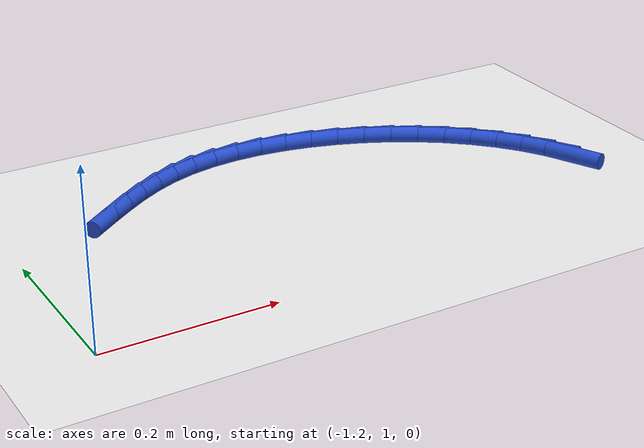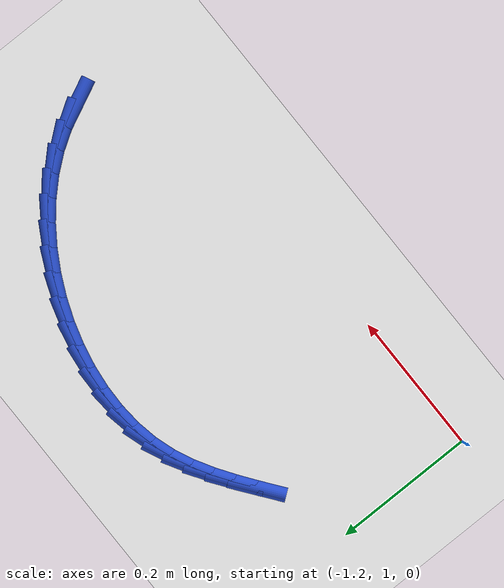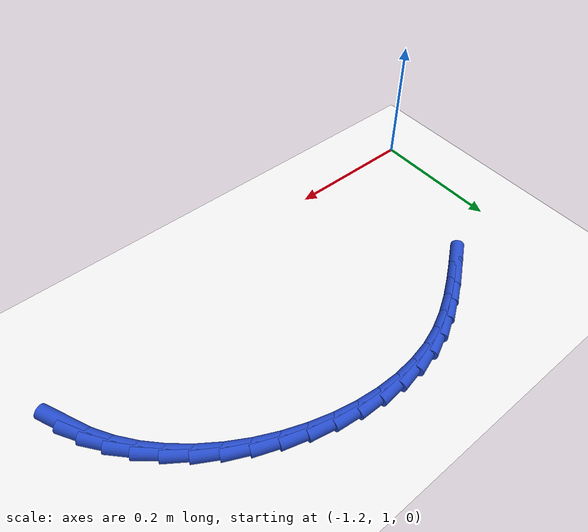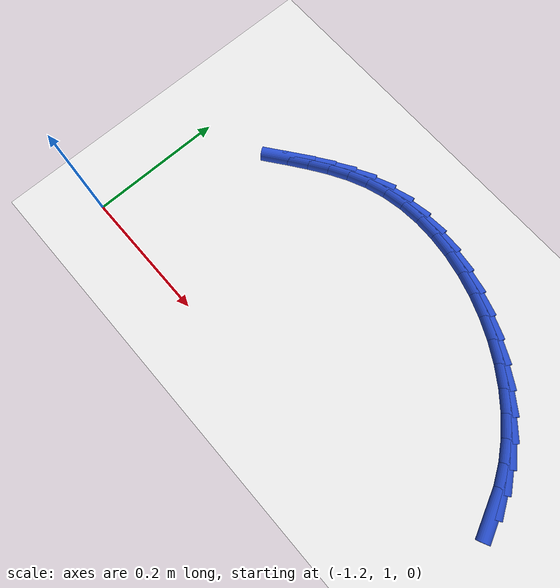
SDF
<sdf version="1.6">
 <world name="default">
  <model name="ground_plane">
   <static>1</static>
   <link name="link">
    <collision name="collision">
     <geometry><plane><normal>0 0 1</normal><size>100 100</size></plane></geometry>
     <surface><friction><ode><mu>100</mu><mu2>50</mu2></ode></friction></surface>
    </collision>
    <visual name="visual">
     <cast_shadows>0</cast_shadows>
     <geometry><plane><normal>0 0 1</normal><size>100 100</size></plane></geometry>
     <material>
      <script><uri>file://media/materials/scripts/gazebo.material</uri><name>Gazebo/WhiteGlow</name></script>
     </material>
    </visual>
   </link>
  </model>
  <model name="line">
   <link name="link_42">
    <pose>-0.5274440859321834 1.1215499630278487 0.01 0 1.57 -1.1298664862024286</pose>
    <collision name="collision">
     <geometry><cylinder><radius>0.01</radius><length>0.08</length></cylinder></geometry>
    </collision>
    <visual name="visual">
     <material>
      <script><name>Gazebo/Blue</name><uri>file://media/materials/scripts/gazebo.material</uri></script>
     </material>
     <geometry><cylinder><radius>0.01</radius><length>0.08</length></cylinder></geometry>
    </visual>
   </link>
   <link name="link_43">
    <pose>-0.5409423319355913 1.1501529746308705 0.01 0 1.57 -1.0085178067597893</pose>
    <collision name="collision">
     <geometry><cylinder><radius>0.01</radius><length>0.08</length></cylinder></geometry>
    </collision>
    <visual name="visual">
     <material>
      <script><name>Gazebo/Blue</name><uri>file://media/materials/scripts/gazebo.material</uri></script>
     </material>
     <geometry><cylinder><radius>0.01</radius><length>0.08</length></cylinder></geometry>
    </visual>
   </link>
   <link name="link_44">
    <pose>-0.5580003314924393 1.1772236553269166 0.01 0 1.57 -0.897079715083553</pose>
    <collision name="collision">
     <geometry><cylinder><radius>0.01</radius><length>0.08</length></cylinder></geometry>
    </collision>
    <visual name="visual">
     <material>
      <script><name>Gazebo/Blue</name><uri>file://media/materials/scripts/gazebo.material</uri></script>
     </material>
     <geometry><cylinder><radius>0.01</radius><length>0.08</length></cylinder></geometry>
    </visual>
   </link>
   <link name="link_45">
    <pose>-0.5782722103292995 1.2026167826896061 0.01 0 1.57 -0.7949259154296981</pose>
    <collision name="collision">
     <geometry><cylinder><radius>0.01</radius><length>0.08</length></cylinder></geometry>
    </collision>
    <visual name="visual">
     <material>
      <script><name>Gazebo/Blue</name><uri>file://media/materials/scripts/gazebo.material</uri></script>
     </material>
     <geometry><cylinder><radius>0.01</radius><length>0.08</length></cylinder></geometry>
    </visual>
   </link>
   <link name="link_46">
    <pose>-0.6013995535018942 1.2261890819393602 0.01 0 1.57 -0.700572011375388</pose>
    <collision name="collision">
     <geometry><cylinder><radius>0.01</radius><length>0.08</length></cylinder></geometry>
    </collision>
    <visual name="visual">
     <material>
      <script><name>Gazebo/Blue</name><uri>file://media/materials/scripts/gazebo.material</uri></script>
     </material>
     <geometry><cylinder><radius>0.01</radius><length>0.08</length></cylinder></geometry>
    </visual>
   </link>
   <link name="link_47">
    <pose>-0.6270239460659456 1.2477972782966018 0.01 0 1.57 -0.6123365396463943</pose>
    <collision name="collision">
     <geometry><cylinder><radius>0.01</radius><length>0.08</length></cylinder></geometry>
    </collision>
    <visual name="visual">
     <material>
      <script><name>Gazebo/Blue</name><uri>file://media/materials/scripts/gazebo.material</uri></script>
     </material>
     <geometry><cylinder><radius>0.01</radius><length>0.08</length></cylinder></geometry>
    </visual>
   </link>
   <link name="link_48">
    <pose>-0.654786973077176 1.2672980969817524 0.01 0 1.57 -0.5284937240804494</pose>
    <collision name="collision">
     <geometry><cylinder><radius>0.01</radius><length>0.08</length></cylinder></geometry>
    </collision>
    <visual name="visual">
     <material>
      <script><name>Gazebo/Blue</name><uri>file://media/materials/scripts/gazebo.material</uri></script>
     </material>
     <geometry><cylinder><radius>0.01</radius><length>0.08</length></cylinder></geometry>
    </visual>
   </link>
   <link name="link_49">
    <pose>-0.6843302195913078 1.2845482632152347 0.01 0 1.57 -0.44733660933894726</pose>
    <collision name="collision">
     <geometry><cylinder><radius>0.01</radius><length>0.08</length></cylinder></geometry>
    </collision>
    <visual name="visual">
     <material>
      <script><name>Gazebo/Blue</name><uri>file://media/materials/scripts/gazebo.material</uri></script>
     </material>
     <geometry><cylinder><radius>0.01</radius><length>0.08</length></cylinder></geometry>
    </visual>
   </link>
   <link name="link_50">
    <pose>-0.7152952706640631 1.299404502217471 0.01 0 1.57 -0.3671848753250154</pose>
    <collision name="collision">
     <geometry><cylinder><radius>0.01</radius><length>0.08</length></cylinder></geometry>
    </collision>
    <visual name="visual">
     <material>
      <script><name>Gazebo/Blue</name><uri>file://media/materials/scripts/gazebo.material</uri></script>
     </material>
     <geometry><cylinder><radius>0.01</radius><length>0.08</length></cylinder></geometry>
    </visual>
   </link>
   <link name="link_51">
    <pose>-0.7473237113511644 1.3117235392088826 0.01 0 1.57 -0.2863630984443288</pose>
    <collision name="collision">
     <geometry><cylinder><radius>0.01</radius><length>0.08</length></cylinder></geometry>
    </collision>
    <visual name="visual">
     <material>
      <script><name>Gazebo/Blue</name><uri>file://media/materials/scripts/gazebo.material</uri></script>
     </material>
     <geometry><cylinder><radius>0.01</radius><length>0.08</length></cylinder></geometry>
    </visual>
   </link>
   <link name="link_52">
    <pose>-0.7800571267083338 1.321362099409893 0.01 0 1.57 -0.2031677565558003</pose>
    <collision name="collision">
     <geometry><cylinder><radius>0.01</radius><length>0.08</length></cylinder></geometry>
    </collision>
    <visual name="visual">
     <material>
      <script><name>Gazebo/Blue</name><uri>file://media/materials/scripts/gazebo.material</uri></script>
     </material>
     <geometry><cylinder><radius>0.01</radius><length>0.08</length></cylinder></geometry>
    </visual>
   </link>
   <link name="link_53">
    <pose>-0.8131371017912935 1.3281769080409227 0.01 0 1.57 -0.11583834713216741</pose>
    <collision name="collision">
     <geometry><cylinder><radius>0.01</radius><length>0.08</length></cylinder></geometry>
    </collision>
    <visual name="visual">
     <material>
      <script><name>Gazebo/Blue</name><uri>file://media/materials/scripts/gazebo.material</uri></script>
     </material>
     <geometry><cylinder><radius>0.01</radius><length>0.08</length></cylinder></geometry>
    </visual>
   </link>
   <link name="link_54">
    <pose>-0.8462052216557658 1.3320246903223947 0.01 0 1.57 -0.022550600253544082</pose>
    <collision name="collision">
     <geometry><cylinder><radius>0.01</radius><length>0.08</length></cylinder></geometry>
    </collision>
    <visual name="visual">
     <material>
      <script><name>Gazebo/Blue</name><uri>file://media/materials/scripts/gazebo.material</uri></script>
     </material>
     <geometry><cylinder><radius>0.01</radius><length>0.08</length></cylinder></geometry>
    </visual>
   </link>
   <link name="link_55">
    <pose>-0.8789030713574737 1.3327621714747315 0.01 0 1.57 0.07854189724979344</pose>
    <collision name="collision">
     <geometry><cylinder><radius>0.01</radius><length>0.08</length></cylinder></geometry>
    </collision>
    <visual name="visual">
     <material>
      <script><name>Gazebo/Blue</name><uri>file://media/materials/scripts/gazebo.material</uri></script>
     </material>
     <geometry><cylinder><radius>0.01</radius><length>0.08</length></cylinder></geometry>
    </visual>
   </link>
   <link name="link_56">
    <pose>-0.9108722359521386 1.3302460767183546 0.01 0 1.57 0.18917898786006135</pose>
    <collision name="collision">
     <geometry><cylinder><radius>0.01</radius><length>0.08</length></cylinder></geometry>
    </collision>
    <visual name="visual">
     <material>
      <script><name>Gazebo/Blue</name><uri>file://media/materials/scripts/gazebo.material</uri></script>
     </material>
     <geometry><cylinder><radius>0.01</radius><length>0.08</length></cylinder></geometry>
    </visual>
   </link>
   <link name="link_57">
    <pose>-0.9417543004954834 1.3243331312736872 0.01 0 1.57 0.310371444108355</pose>
    <collision name="collision">
     <geometry><cylinder><radius>0.01</radius><length>0.08</length></cylinder></geometry>
    </collision>
    <visual name="visual">
     <material>
      <script><name>Gazebo/Blue</name><uri>file://media/materials/scripts/gazebo.material</uri></script>
     </material>
     <geometry><cylinder><radius>0.01</radius><length>0.08</length></cylinder></geometry>
    </visual>
   </link>
   <link name="link_58">
    <pose>-0.971197612150102 1.3148895685342872 0.01 0 1.57 0.42788248551583796</pose>
    <collision name="collision">
     <geometry><cylinder><radius>0.01</radius><length>0.08</length></cylinder></geometry>
    </collision>
    <visual name="visual">
     <material>
      <script><name>Gazebo/Blue</name><uri>file://media/materials/scripts/gazebo.material</uri></script>
     </material>
     <geometry><cylinder><radius>0.01</radius><length>0.08</length></cylinder></geometry>
    </visual>
   </link>
   <link name="link_59">
    <pose>-0.9991171688426635 1.3021565585340167 0.01 0 1.57 0.5207621515845853</pose>
    <collision name="collision">
     <geometry><cylinder><radius>0.01</radius><length>0.08</length></cylinder></geometry>
    </collision>
    <visual name="visual">
     <material>
      <script><name>Gazebo/Blue</name><uri>file://media/materials/scripts/gazebo.material</uri></script>
     </material>
     <geometry><cylinder><radius>0.01</radius><length>0.08</length></cylinder></geometry>
    </visual>
   </link>
   <link name="link_60">
    <pose>-1.0257765564623886 1.2868654195348226 0.01 0 1.57 0.586941643941539</pose>
    <collision name="collision">
     <geometry><cylinder><radius>0.01</radius><length>0.08</length></cylinder></geometry>
    </collision>
    <visual name="visual">
     <material>
      <script><name>Gazebo/Blue</name><uri>file://media/materials/scripts/gazebo.material</uri></script>
     </material>
     <geometry><cylinder><radius>0.01</radius><length>0.08</length></cylinder></geometry>
    </visual>
   </link>
   <link name="link_61">
    <pose>-1.0514628801616983 1.2697805401465179 0.01 0 1.57 0.6270198667300313</pose>
    <collision name="collision">
     <geometry><cylinder><radius>0.01</radius><length>0.08</length></cylinder></geometry>
    </collision>
    <visual name="visual">
     <material>
      <script><name>Gazebo/Blue</name><uri>file://media/materials/scripts/gazebo.material</uri></script>
     </material>
     <geometry><cylinder><radius>0.01</radius><length>0.08</length></cylinder></geometry>
    </visual>
   </link>
   <link name="link_62">
    <pose>-1.0764632357896622 1.2516662770911948 0.01 0 1.57 0.6461332044613861</pose>
    <collision name="collision">
     <geometry><cylinder><radius>0.01</radius><length>0.08</length></cylinder></geometry>
    </collision>
    <visual name="visual">
     <material>
      <script><name>Gazebo/Blue</name><uri>file://media/materials/scripts/gazebo.material</uri></script>
     </material>
     <geometry><cylinder><radius>0.01</radius><length>0.08</length></cylinder></geometry>
    </visual>
   </link>
  </model>
 </world>
</sdf>
